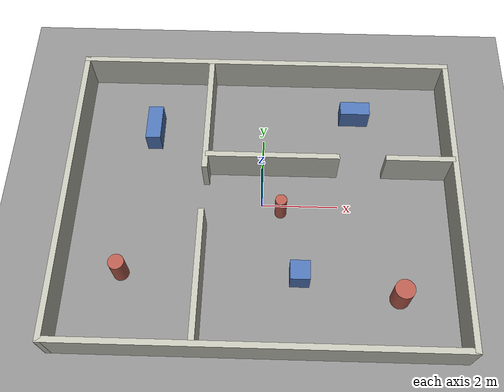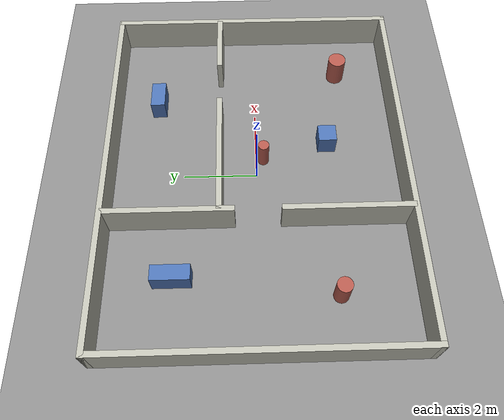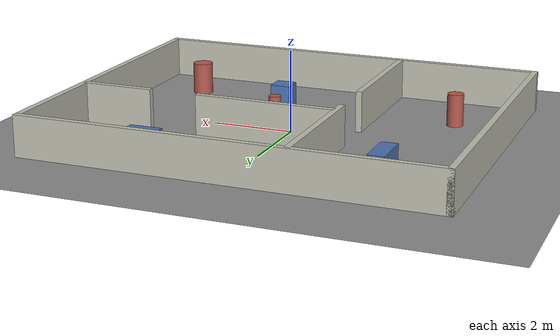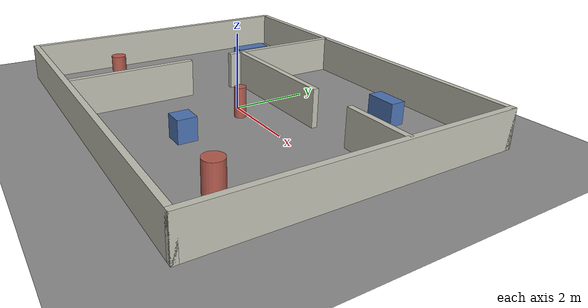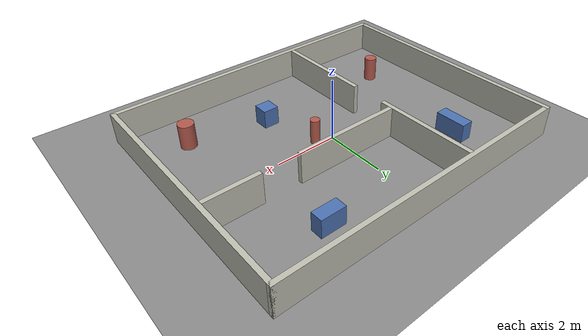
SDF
<?xml version="1.0"?>
<!-- Two-room test world: 10 x 8 m outer walls, two doorways and several obstacles. -->
<sdf version="1.9">
  <world name="turtlebot2_world">
    <physics name="1ms" type="ignored">
      <max_step_size>0.004</max_step_size>
      <real_time_factor>1.0</real_time_factor>
    </physics>
    <plugin filename="gz-sim-physics-system" name="gz::sim::systems::Physics"/>
    <plugin filename="gz-sim-user-commands-system" name="gz::sim::systems::UserCommands"/>
    <plugin filename="gz-sim-scene-broadcaster-system" name="gz::sim::systems::SceneBroadcaster"/>
    <plugin filename="gz-sim-sensors-system" name="gz::sim::systems::Sensors">
      <render_engine>ogre2</render_engine>
    </plugin>

    <light type="directional" name="sun">
      <cast_shadows>true</cast_shadows>
      <pose>0 0 10 0 0 0</pose>
      <diffuse>0.9 0.9 0.9 1</diffuse>
      <specular>0.2 0.2 0.2 1</specular>
      <direction>-0.5 0.1 -0.9</direction>
    </light>

    <model name="ground_plane">
      <static>true</static>
      <link name="link">
        <collision name="collision">
          <geometry><plane><normal>0 0 1</normal><size>30 30</size></plane></geometry>
        </collision>
        <visual name="visual">
          <geometry><plane><normal>0 0 1</normal><size>30 30</size></plane></geometry>
          <material><ambient>0.55 0.55 0.55 1</ambient><diffuse>0.55 0.55 0.55 1</diffuse></material>
        </visual>
      </link>
    </model>

    <model name="wall_north">
      <static>true</static>
      <pose>0 4 0.5 0 0 0</pose>
      <link name="link">
        <collision name="collision"><geometry><box><size>10.15 0.15 1.0</size></box></geometry></collision>
        <visual name="visual">
          <geometry><box><size>10.15 0.15 1.0</size></box></geometry>
          <material><ambient>0.75 0.75 0.7 1</ambient><diffuse>0.75 0.75 0.7 1</diffuse></material>
        </visual>
      </link>
    </model>
    <model name="wall_south">
      <static>true</static>
      <pose>0 -4 0.5 0 0 0</pose>
      <link name="link">
        <collision name="collision"><geometry><box><size>10.15 0.15 1.0</size></box></geometry></collision>
        <visual name="visual">
          <geometry><box><size>10.15 0.15 1.0</size></box></geometry>
          <material><ambient>0.75 0.75 0.7 1</ambient><diffuse>0.75 0.75 0.7 1</diffuse></material>
        </visual>
      </link>
    </model>
    <model name="wall_east">
      <static>true</static>
      <pose>5 0 0.5 0 0 0</pose>
      <link name="link">
        <collision name="collision"><geometry><box><size>0.15 8.15 1.0</size></box></geometry></collision>
        <visual name="visual">
          <geometry><box><size>0.15 8.15 1.0</size></box></geometry>
          <material><ambient>0.75 0.75 0.7 1</ambient><diffuse>0.75 0.75 0.7 1</diffuse></material>
        </visual>
      </link>
    </model>
    <model name="wall_west">
      <static>true</static>
      <pose>-5 0 0.5 0 0 0</pose>
      <link name="link">
        <collision name="collision"><geometry><box><size>0.15 8.15 1.0</size></box></geometry></collision>
        <visual name="visual">
          <geometry><box><size>0.15 8.15 1.0</size></box></geometry>
          <material><ambient>0.75 0.75 0.7 1</ambient><diffuse>0.75 0.75 0.7 1</diffuse></material>
        </visual>
      </link>
    </model>
    <model name="divider_a_south">
      <static>true</static>
      <pose>-1.5 -2.3 0.5 0 0 0</pose>
      <link name="link">
        <collision name="collision"><geometry><box><size>0.15 3.4 1.0</size></box></geometry></collision>
        <visual name="visual">
          <geometry><box><size>0.15 3.4 1.0</size></box></geometry>
          <material><ambient>0.75 0.75 0.7 1</ambient><diffuse>0.75 0.75 0.7 1</diffuse></material>
        </visual>
      </link>
    </model>
    <model name="divider_a_north">
      <static>true</static>
      <pose>-1.5 2.3 0.5 0 0 0</pose>
      <link name="link">
        <collision name="collision"><geometry><box><size>0.15 3.4 1.0</size></box></geometry></collision>
        <visual name="visual">
          <geometry><box><size>0.15 3.4 1.0</size></box></geometry>
          <material><ambient>0.75 0.75 0.7 1</ambient><diffuse>0.75 0.75 0.7 1</diffuse></material>
        </visual>
      </link>
    </model>
    <model name="divider_b_west">
      <static>true</static>
      <pose>0.25 1 0.5 0 0 0</pose>
      <link name="link">
        <collision name="collision"><geometry><box><size>3.5 0.15 1.0</size></box></geometry></collision>
        <visual name="visual">
          <geometry><box><size>3.5 0.15 1.0</size></box></geometry>
          <material><ambient>0.75 0.75 0.7 1</ambient><diffuse>0.75 0.75 0.7 1</diffuse></material>
        </visual>
      </link>
    </model>
    <model name="divider_b_east">
      <static>true</static>
      <pose>4.1 1 0.5 0 0 0</pose>
      <link name="link">
        <collision name="collision"><geometry><box><size>1.8 0.15 1.0</size></box></geometry></collision>
        <visual name="visual">
          <geometry><box><size>1.8 0.15 1.0</size></box></geometry>
          <material><ambient>0.75 0.75 0.7 1</ambient><diffuse>0.75 0.75 0.7 1</diffuse></material>
        </visual>
      </link>
    </model>
    <model name="box_1">
      <static>true</static>
      <pose>1.0 -2.0 0.3 0 0 0</pose>
      <link name="link">
        <collision name="collision"><geometry><box><size>0.5 0.5 0.6</size></box></geometry></collision>
        <visual name="visual">
          <geometry><box><size>0.5 0.5 0.6</size></box></geometry>
          <material><ambient>0.3 0.45 0.7 1</ambient><diffuse>0.3 0.45 0.7 1</diffuse></material>
        </visual>
      </link>
    </model>
    <model name="box_2">
      <static>true</static>
      <pose>-3.0 2.2 0.3 0 0 0</pose>
      <link name="link">
        <collision name="collision"><geometry><box><size>0.4 1.0 0.6</size></box></geometry></collision>
        <visual name="visual">
          <geometry><box><size>0.4 1.0 0.6</size></box></geometry>
          <material><ambient>0.3 0.45 0.7 1</ambient><diffuse>0.3 0.45 0.7 1</diffuse></material>
        </visual>
      </link>
    </model>
    <model name="box_3">
      <static>true</static>
      <pose>2.5 2.8 0.3 0 0 0</pose>
      <link name="link">
        <collision name="collision"><geometry><box><size>0.8 0.4 0.6</size></box></geometry></collision>
        <visual name="visual">
          <geometry><box><size>0.8 0.4 0.6</size></box></geometry>
          <material><ambient>0.3 0.45 0.7 1</ambient><diffuse>0.3 0.45 0.7 1</diffuse></material>
        </visual>
      </link>
    </model>
    <model name="pillar_1">
      <static>true</static>
      <pose>3.5 -2.5 0.4 0 0 0</pose>
      <link name="link">
        <collision name="collision"><geometry><cylinder><radius>0.25</radius><length>0.8</length></cylinder></geometry></collision>
        <visual name="visual">
          <geometry><cylinder><radius>0.25</radius><length>0.8</length></cylinder></geometry>
          <material><ambient>0.7 0.35 0.3 1</ambient><diffuse>0.7 0.35 0.3 1</diffuse></material>
        </visual>
      </link>
    </model>
    <model name="pillar_2">
      <static>true</static>
      <pose>-3.5 -2.0 0.4 0 0 0</pose>
      <link name="link">
        <collision name="collision"><geometry><cylinder><radius>0.2</radius><length>0.8</length></cylinder></geometry></collision>
        <visual name="visual">
          <geometry><cylinder><radius>0.2</radius><length>0.8</length></cylinder></geometry>
          <material><ambient>0.7 0.35 0.3 1</ambient><diffuse>0.7 0.35 0.3 1</diffuse></material>
        </visual>
      </link>
    </model>
    <model name="pillar_3">
      <static>true</static>
      <pose>0.5 -0.2 0.4 0 0 0</pose>
      <link name="link">
        <collision name="collision"><geometry><cylinder><radius>0.15</radius><length>0.8</length></cylinder></geometry></collision>
        <visual name="visual">
          <geometry><cylinder><radius>0.15</radius><length>0.8</length></cylinder></geometry>
          <material><ambient>0.7 0.35 0.3 1</ambient><diffuse>0.7 0.35 0.3 1</diffuse></material>
        </visual>
      </link>
    </model>
  </world>
</sdf>
